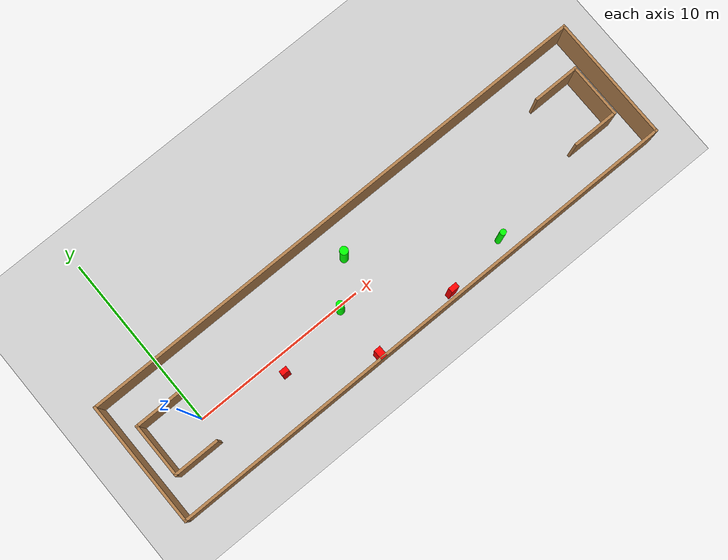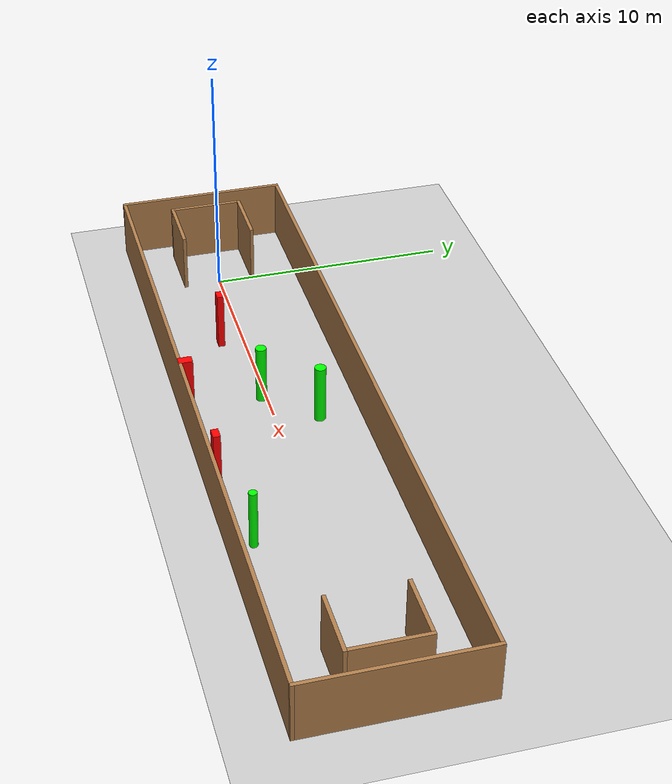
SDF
<sdf version="1.7">
 <world name="default">
  <light name="sun" type="directional">
   <pose>0 0 10 0 -0 0</pose>
   <diffuse>0.8 0.8 0.8 1</diffuse>
   <specular>0.2 0.2 0.2 1</specular>
   <attenuation>
    <range>1000</range>
    <constant>0.9</constant>
    <linear>0.01</linear>
    <quadratic>0.001</quadratic>
   </attenuation>
   <direction>-0.5 0.1 -0.9</direction>
   <spot><inner_angle>0</inner_angle><outer_angle>0</outer_angle><falloff>0</falloff></spot>
  </light>
  <model name="ground_plane">
   <static>1</static>
   <link name="link">
    <collision name="collision">
     <geometry><plane><normal>0 0 1</normal><size>100 100</size></plane></geometry>
     <surface>
      <contact><collide_bitmask>65535</collide_bitmask></contact>
      <friction><ode><mu>100</mu><mu2>50</mu2></ode></friction>
     </surface>
    </collision>
    <visual name="visual">
     <cast_shadows>0</cast_shadows>
     <geometry><plane><normal>0 0 1</normal><size>100 100</size></plane></geometry>
     <material>
      <script><uri>file://media/materials/scripts/gazebo.material</uri><name>Gazebo/Grey</name></script>
     </material>
    </visual>
   </link>
  </model>
  <gravity>0 0 -9.8</gravity>
  <magnetic_field>6e-06 2.3e-05 -4.2e-05</magnetic_field>
  <atmosphere type="adiabatic"/>
  <physics type="ode">
   <max_step_size>0.001</max_step_size>
   <real_time_factor>1</real_time_factor>
   <real_time_update_rate>1000</real_time_update_rate>
  </physics>
  <scene><ambient>0.4 0.4 0.4 1</ambient><background>0.7 0.7 0.7 1</background><shadows>1</shadows></scene>
  <spherical_coordinates>
   <surface_model>EARTH_WGS84</surface_model>
   <latitude_deg>0</latitude_deg>
   <longitude_deg>0</longitude_deg>
   <elevation>0</elevation>
   <heading_deg>0</heading_deg>
  </spherical_coordinates>
  <model name="my_base_walls">
   <link name="Wall_0">
    <collision name="Wall_0_Collision">
     <geometry><box><size>7.15 0.15 2.5</size></box></geometry>
     <pose>0 0 1.25 0 -0 0</pose>
    </collision>
    <visual name="Wall_0_Visual">
     <pose>0 0 1.25 0 -0 0</pose>
     <geometry><box><size>7.15 0.15 2.5</size></box></geometry>
     <material>
      <script><uri>file://media/materials/scripts/gazebo.material</uri><name>Gazebo/Wood</name></script>
      <ambient>1 1 1 1</ambient>
     </material>
     <meta><layer>0</layer></meta>
    </visual>
    <pose>-15 0 0 0 -0 1.5708</pose>
   </link>
   <link name="Wall_10">
    <collision name="Wall_10_Collision">
     <geometry><box><size>2.65 0.15 2.5</size></box></geometry>
     <pose>0 0 1.25 0 -0 0</pose>
    </collision>
    <visual name="Wall_10_Visual">
     <pose>0 0 1.25 0 -0 0</pose>
     <geometry><box><size>2.65 0.15 2.5</size></box></geometry>
     <material>
      <script><uri>file://media/materials/scripts/gazebo.material</uri><name>Gazebo/Wood</name></script>
      <ambient>1 1 1 1</ambient>
     </material>
     <meta><layer>0</layer></meta>
    </visual>
    <pose>-12.75 -1.5 0 0 -0 0</pose>
   </link>
   <link name="Wall_12">
    <collision name="Wall_12_Collision">
     <geometry><box><size>2.65 0.15 2.5</size></box></geometry>
     <pose>0 0 1.25 0 -0 0</pose>
    </collision>
    <visual name="Wall_12_Visual">
     <pose>0 0 1.25 0 -0 0</pose>
     <geometry><box><size>2.65 0.15 2.5</size></box></geometry>
     <material>
      <script><uri>file://media/materials/scripts/gazebo.material</uri><name>Gazebo/Wood</name></script>
      <ambient>1 1 1 1</ambient>
     </material>
     <meta><layer>0</layer></meta>
    </visual>
    <pose>-12.75 1.5 0 0 -0 0</pose>
   </link>
   <link name="Wall_14">
    <collision name="Wall_14_Collision">
     <geometry><box><size>3.15 0.15 2.5</size></box></geometry>
     <pose>0 0 1.25 0 -0 0</pose>
    </collision>
    <visual name="Wall_14_Visual">
     <pose>0 0 1.25 0 -0 0</pose>
     <geometry><box><size>3.15 0.15 2.5</size></box></geometry>
     <material>
      <script><uri>file://media/materials/scripts/gazebo.material</uri><name>Gazebo/Wood</name></script>
      <ambient>1 1 1 1</ambient>
     </material>
     <meta><layer>0</layer></meta>
    </visual>
    <pose>14 0 0 0 -0 -1.5708</pose>
   </link>
   <link name="Wall_15">
    <collision name="Wall_15_Collision">
     <geometry><box><size>2.65 0.15 2.5</size></box></geometry>
     <pose>0 0 1.25 0 -0 0</pose>
    </collision>
    <visual name="Wall_15_Visual">
     <pose>0 0 1.25 0 -0 0</pose>
     <geometry><box><size>2.65 0.15 2.5</size></box></geometry>
     <material>
      <script><uri>file://media/materials/scripts/gazebo.material</uri><name>Gazebo/Wood</name></script>
      <ambient>1 1 1 1</ambient>
     </material>
     <meta><layer>0</layer></meta>
    </visual>
    <pose>12.75 -1.5 0 0 -0 3.14159</pose>
   </link>
   <link name="Wall_17">
    <collision name="Wall_17_Collision">
     <geometry><box><size>2.65 0.15 2.5</size></box></geometry>
     <pose>0 0 1.25 0 -0 0</pose>
    </collision>
    <visual name="Wall_17_Visual">
     <pose>0 0 1.25 0 -0 0</pose>
     <geometry><box><size>2.65 0.15 2.5</size></box></geometry>
     <material>
      <script><uri>file://media/materials/scripts/gazebo.material</uri><name>Gazebo/Wood</name></script>
      <ambient>1 1 1 1</ambient>
     </material>
     <meta><layer>0</layer></meta>
    </visual>
    <pose>12.75 1.5 0 0 -0 3.14159</pose>
   </link>
   <link name="Wall_2">
    <collision name="Wall_2_Collision">
     <geometry><box><size>30.15 0.15 2.5</size></box></geometry>
     <pose>0 0 1.25 0 -0 0</pose>
    </collision>
    <visual name="Wall_2_Visual">
     <pose>0 0 1.25 0 -0 0</pose>
     <geometry><box><size>30.15 0.15 2.5</size></box></geometry>
     <material>
      <script><uri>file://media/materials/scripts/gazebo.material</uri><name>Gazebo/Wood</name></script>
      <ambient>1 1 1 1</ambient>
     </material>
     <meta><layer>0</layer></meta>
    </visual>
    <pose>-0 -3.5 0 0 -0 0</pose>
   </link>
   <link name="Wall_4">
    <collision name="Wall_4_Collision">
     <geometry><box><size>30.15 0.15 2.5</size></box></geometry>
     <pose>0 0 1.25 0 -0 0</pose>
    </collision>
    <visual name="Wall_4_Visual">
     <pose>0 0 1.25 0 -0 0</pose>
     <geometry><box><size>30.15 0.15 2.5</size></box></geometry>
     <material>
      <script><uri>file://media/materials/scripts/gazebo.material</uri><name>Gazebo/Wood</name></script>
      <ambient>1 1 1 1</ambient>
     </material>
     <meta><layer>0</layer></meta>
    </visual>
    <pose>-0 3.5 0 0 -0 0</pose>
   </link>
   <link name="Wall_6">
    <collision name="Wall_6_Collision">
     <geometry><box><size>7.15 0.15 2.5</size></box></geometry>
     <pose>0 0 1.25 0 -0 0</pose>
    </collision>
    <visual name="Wall_6_Visual">
     <pose>0 0 1.25 0 -0 0</pose>
     <geometry><box><size>7.15 0.15 2.5</size></box></geometry>
     <material>
      <script><uri>file://media/materials/scripts/gazebo.material</uri><name>Gazebo/Wood</name></script>
      <ambient>1 1 1 1</ambient>
     </material>
     <meta><layer>0</layer></meta>
    </visual>
    <pose>15 0 0 0 -0 -1.5708</pose>
   </link>
   <link name="Wall_9">
    <collision name="Wall_9_Collision">
     <geometry><box><size>3.15 0.15 2.5</size></box></geometry>
     <pose>0 0 1.25 0 -0 0</pose>
    </collision>
    <visual name="Wall_9_Visual">
     <pose>0 0 1.25 0 -0 0</pose>
     <geometry><box><size>3.15 0.15 2.5</size></box></geometry>
     <material>
      <script><uri>file://media/materials/scripts/gazebo.material</uri><name>Gazebo/Wood</name></script>
      <ambient>1 1 1 1</ambient>
     </material>
     <meta><layer>0</layer></meta>
    </visual>
    <pose>-14 0 0 0 -0 -1.5708</pose>
   </link>
   <static>1</static>
   <pose>11.5 0 0 0 -0 0</pose>
  </model>
  <model name="cylinder1">
   <static>1</static>
   <link name="link">
    <inertial>
     <mass>1</mass>
     <inertia><ixx>0.5</ixx><ixy>0</ixy><ixz>0</ixz><iyy>0.5</iyy><iyz>0</iyz><izz>1</izz></inertia>
    </inertial>
    <collision name="collision">
     <geometry><cylinder><radius>0.16594900749061414</radius><length>2.5</length></cylinder></geometry>
    </collision>
    <visual name="visual">
     <geometry><cylinder><radius>0.16594900749061414</radius><length>2.5</length></cylinder></geometry>
     <material>
      <ambient>0 1 0 1</ambient>
      <diffuse>0 1 0 1</diffuse>
      <specular>0.1 0.1 0.1 1</specular>
      <emissive>0 0 0 0</emissive>
     </material>
    </visual>
   </link>
   <pose>17.288278333030966 -2.5452963838849154 1.25 0 0 0</pose>
  </model>
  <model name="cylinder2">
   <static>1</static>
   <link name="link">
    <inertial>
     <mass>1</mass>
     <inertia><ixx>0.5</ixx><ixy>0</ixy><ixz>0</ixz><iyy>0.5</iyy><iyz>0</iyz><izz>1</izz></inertia>
    </inertial>
    <collision name="collision">
     <geometry><cylinder><radius>0.21888801181021433</radius><length>2.5</length></cylinder></geometry>
    </collision>
    <visual name="visual">
     <geometry><cylinder><radius>0.21888801181021433</radius><length>2.5</length></cylinder></geometry>
     <material>
      <ambient>0 1 0 1</ambient>
      <diffuse>0 1 0 1</diffuse>
      <specular>0.1 0.1 0.1 1</specular>
      <emissive>0 0 0 0</emissive>
     </material>
    </visual>
   </link>
   <pose>8.81410547734232 -0.19964258733348306 1.25 0 0 0</pose>
  </model>
  <model name="cylinder3">
   <static>1</static>
   <link name="link">
    <inertial>
     <mass>1</mass>
     <inertia><ixx>0.5</ixx><ixy>0</ixy><ixz>0</ixz><iyy>0.5</iyy><iyz>0</iyz><izz>1</izz></inertia>
    </inertial>
    <collision name="collision">
     <geometry><cylinder><radius>0.22865396067694993</radius><length>2.5</length></cylinder></geometry>
    </collision>
    <visual name="visual">
     <geometry><cylinder><radius>0.22865396067694993</radius><length>2.5</length></cylinder></geometry>
     <material>
      <ambient>0 1 0 1</ambient>
      <diffuse>0 1 0 1</diffuse>
      <specular>0.1 0.1 0.1 1</specular>
      <emissive>0 0 0 0</emissive>
     </material>
    </visual>
   </link>
   <pose>10.662445272592775 1.7464025019075606 1.25 0 0 0</pose>
  </model>
  <model name="box1">
   <static>1</static>
   <link name="link">
    <inertial>
     <mass>1</mass>
     <inertia><ixx>0.083</ixx><ixy>0</ixy><ixz>0</ixz><iyy>0.083</iyy><iyz>0</iyz><izz>0.083</izz></inertia>
    </inertial>
    <collision name="collision">
     <geometry><box><size>0.4301847535639757 0.2754472927328084 2.5</size></box></geometry>
    </collision>
    <visual name="visual">
     <geometry><box><size>0.4301847535639757 0.2754472927328084 2.5</size></box></geometry>
     <material>
      <ambient>1 0 0 1</ambient>
      <diffuse>1 0 0 1</diffuse>
      <specular>0.1 0.1 0.1 1</specular>
      <emissive>0 0 0 0</emissive>
     </material>
    </visual>
    <sensor name="my_contact" type="contact">
     <contact><collision>box_collision</collision><topic>__default_topic__</topic></contact>
    </sensor>
   </link>
   <pose>4.6594766370824185 -0.9646127290722366 1.25 0 0 0</pose>
  </model>
  <model name="box2">
   <static>1</static>
   <link name="link">
    <inertial>
     <mass>1</mass>
     <inertia><ixx>0.083</ixx><ixy>0</ixy><ixz>0</ixz><iyy>0.083</iyy><iyz>0</iyz><izz>0.083</izz></inertia>
    </inertial>
    <collision name="collision">
     <geometry><box><size>0.4739705259312191 0.2849444056691574 2.5</size></box></geometry>
    </collision>
    <visual name="visual">
     <geometry><box><size>0.4739705259312191 0.2849444056691574 2.5</size></box></geometry>
     <material>
      <ambient>1 0 0 1</ambient>
      <diffuse>1 0 0 1</diffuse>
      <specular>0.1 0.1 0.1 1</specular>
      <emissive>0 0 0 0</emissive>
     </material>
    </visual>
    <sensor name="my_contact" type="contact">
     <contact><collision>box_collision</collision><topic>__default_topic__</topic></contact>
    </sensor>
   </link>
   <pose>13.641759374687377 -3.096023746660245 1.25 0 0 0</pose>
  </model>
  <model name="box3">
   <static>1</static>
   <link name="link">
    <inertial>
     <mass>1</mass>
     <inertia><ixx>0.083</ixx><ixy>0</ixy><ixz>0</ixz><iyy>0.083</iyy><iyz>0</iyz><izz>0.083</izz></inertia>
    </inertial>
    <collision name="collision">
     <geometry><box><size>0.3694509425953082 0.5685473930460685 2.5</size></box></geometry>
    </collision>
    <visual name="visual">
     <geometry><box><size>0.3694509425953082 0.5685473930460685 2.5</size></box></geometry>
     <material>
      <ambient>1 0 0 1</ambient>
      <diffuse>1 0 0 1</diffuse>
      <specular>0.1 0.1 0.1 1</specular>
      <emissive>0 0 0 0</emissive>
     </material>
    </visual>
    <sensor name="my_contact" type="contact">
     <contact><collision>box_collision</collision><topic>__default_topic__</topic></contact>
    </sensor>
   </link>
   <pose>8.831676239537481 -3.2706050479337874 1.25 0 0 0</pose>
  </model>
 </world>
</sdf>
